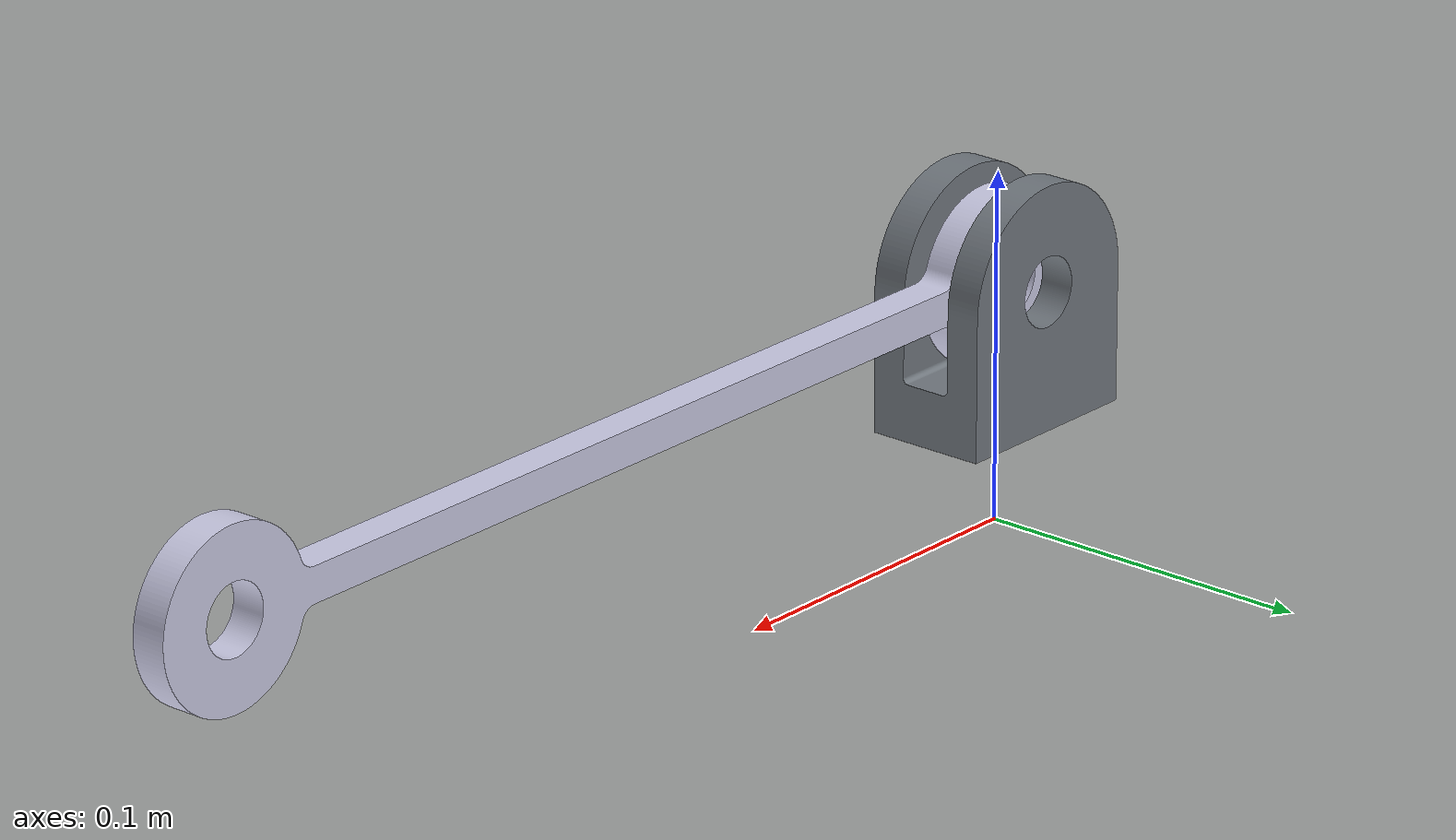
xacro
<?xml version="1.0"?>
<robot name="manipulador_1DoF" xmlns:xacro="http://wiki.ros.org/xacro">
    <!-- includes -->
    <xacro:include filename="$(find simulacion_1dof)/urdf/base.urdf.xacro"/>
    <xacro:include filename="$(find simulacion_1dof)/urdf/brazo.urdf.xacro"/>

    <!-- Propiedades -->
    <xacro:property name="PI" value="3.1415926535897931"/>
    <xacro:property name="load" value="1"/>

    <!-- argumentos -->
    <xacro:arg name="robot_ns" default=""/>
    <xacro:arg name="prefix" default=""/>

    <!-- Robot Parts -->

    <!-- Base -->
    <xacro:base prefix="$(arg prefix)"/>
    <!-- Wheels -->
    <xacro:brazo prefix="$(arg prefix)" parent="base_link" load="${load}">
        <origin xyz="0 0 0.02" rpy="0 0 0"/>
    </xacro:brazo>

    <!-- Gazebo ROS control plugins -->
    <xacro:include filename="$(find simulacion_1dof)/urdf/ros2_control.urdf.xacro"/>
    <xacro:arg name="config_controllers" default="$(find simulacion_1dof)/config/controllers.yaml"/>
    <xacro:arg name="update_rate" default="20"/>
    <xacro:ros2_control/>

</robot>

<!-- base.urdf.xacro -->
<robot name="base" xmlns:xacro="http://wiki.ros.org/xacro">

  <xacro:property name="PI" value="3.1415926535897931"/>

  <!-- base XACRO -->
  <xacro:macro name="base" params="prefix ">

 <!-- Fixed joint to world -->
    <link name="world"/>

    <joint name="world_to_base" type="fixed">
        <parent link="world"/>
        <child link="$(arg prefix)base_link"/>
        <origin xyz="0 0 0.05" rpy="0 0 0"/>
    </joint>

    <!-- BASE LINK -->
    <link name="${prefix}base_link">
        <inertial>
            <origin xyz="0 0 0" rpy="0 0 0"/>
            <mass value="5000"/>
            <inertia ixx="0.000008611" ixy="0" ixz="0" iyy="0.000008611" iyz="0" izz="0.000008611"/>
        </inertial>
        <visual>
            <origin xyz="0 0 0" rpy="0 0 0"/>
            <geometry>
                <mesh filename="file://$(find simulacion_1dof)/meshes/dae/base.dae" scale="1.0 1.0 1.0"/>
            </geometry>
        </visual>
        <collision>
            <origin xyz="0 0 0" rpy="0 0 0"/>
            <geometry>
                <mesh filename="file://$(find simulacion_1dof)/meshes/dae/base.dae" scale="1.0 1.0 1.0"/>
            </geometry>
        </collision>
    </link>
  </xacro:macro>
</robot>

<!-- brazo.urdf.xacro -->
<robot name="brazo" xmlns:xacro="http://wiki.ros.org/xacro">

  <!-- brazo XACRO -->
  <xacro:macro name="brazo" params="prefix parent *origin load">

    <!-- brazo -->
    <joint name="${prefix}brazo_joint" type="continuous">
        <xacro:insert_block name="origin" />
        <parent link="${parent}"/>
        <child link="${prefix}brazo_link"/>
        <axis xyz="0 -1 0" rpy="0 0 0" />
        <limit effort="5000" velocity="100"/>
        <dynamics damping="0.05" friction="0.1"/>
    </joint>

    <link name="${prefix}brazo_link">
        <inertial>
            <origin xyz="0.15 0 0" rpy="0 0 0"/>
            <mass value="0.075"/>
            <inertia ixx="0.000008611" ixy="0" ixz="0" iyy="0.00228770" iyz="0" izz="0.00228770"/>
        </inertial>
        <visual>
            <origin xyz="0.15 0 0" rpy="0 0 0"/>
            <geometry>
            <mesh filename="file://$(find simulacion_1dof)/meshes/dae/brazo.dae" scale="1.0 1.0 1.0"/>
            </geometry>
        </visual>
        <collision>
            <origin xyz="0.15 0 0" rpy="0 0 0"/>
            <geometry>
                <mesh filename="file://$(find simulacion_1dof)/meshes/dae/brazo.dae" scale="1.0 1.0 1.0"/>
            </geometry>
        </collision>
    </link>

    <!-- load -->

    <joint name="${prefix}load_joint" type="fixed">
        <parent link="${prefix}brazo_link"/>
        <child link="${prefix}load_link"/>
        <origin xyz="0.3 0 0" rpy="0 0 0"/>
    </joint>

    <link name="${prefix}load_link">
        <inertial>
            <origin xyz="0 0 0" rpy="0 0 0"/>
            <mass value="${load}"/>
            <inertia ixx="0.000008611" ixy="0" ixz="0" iyy="0.000008611" iyz="0" izz="0.000008611"/>
        </inertial>
    </link>

    <!-- Transmission is important to link the joints and the controller (see config/controller.yaml)-->
    <transmission name="${prefix}_brazo_joint_trans">
        <type>transmission_interface/SimpleTransmission</type>
        <joint name="${prefix}brazo_joint" >
            <hardwareInterface>hardware_interface/VelocityJointInterface</hardwareInterface>
        </joint>
        <actuator name="${prefix}brazo_joint_motor">
            <mechanicalReduction>1</mechanicalReduction>
        </actuator>
    </transmission>

    <gazebo reference="${prefix}brazo_link">
        <mu1>0.05</mu1>
        <mu2>0.1</mu2>
    </gazebo>
  </xacro:macro>
</robot>
